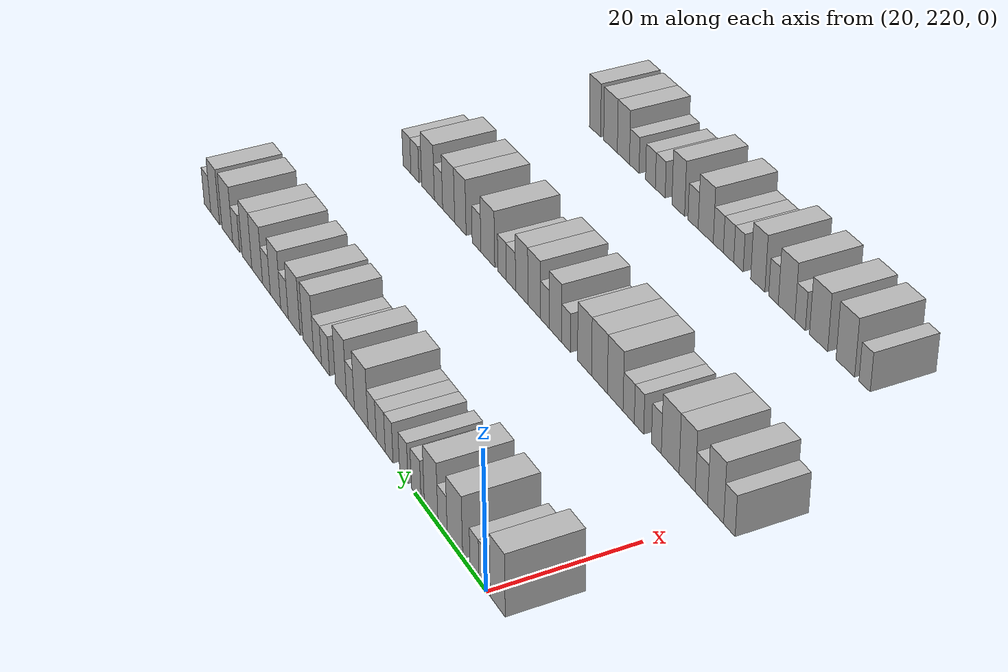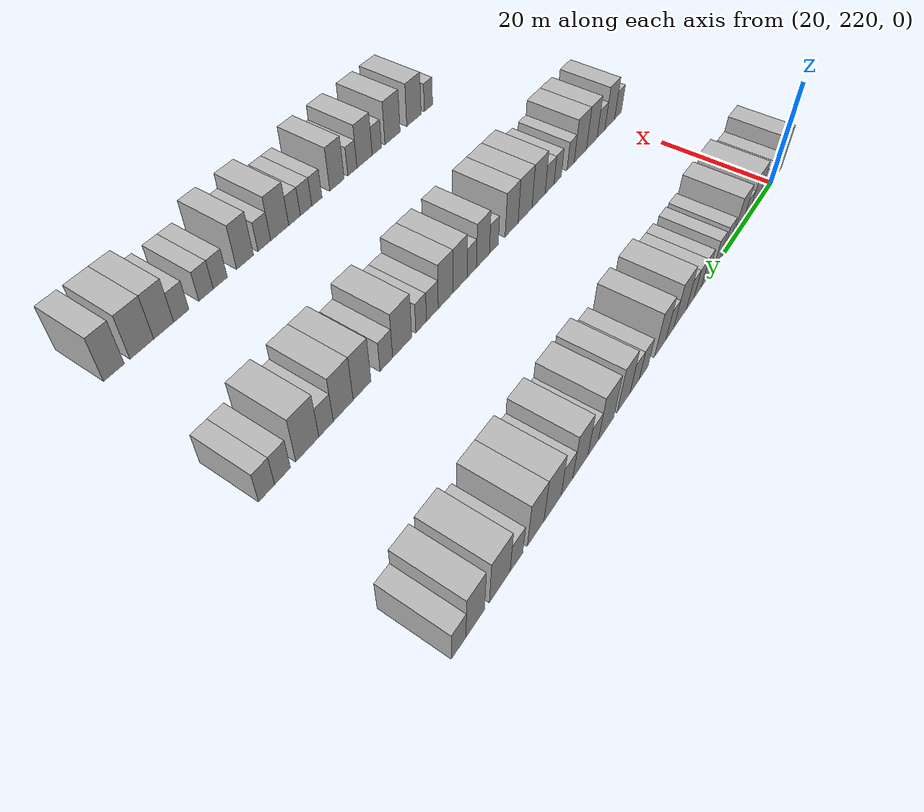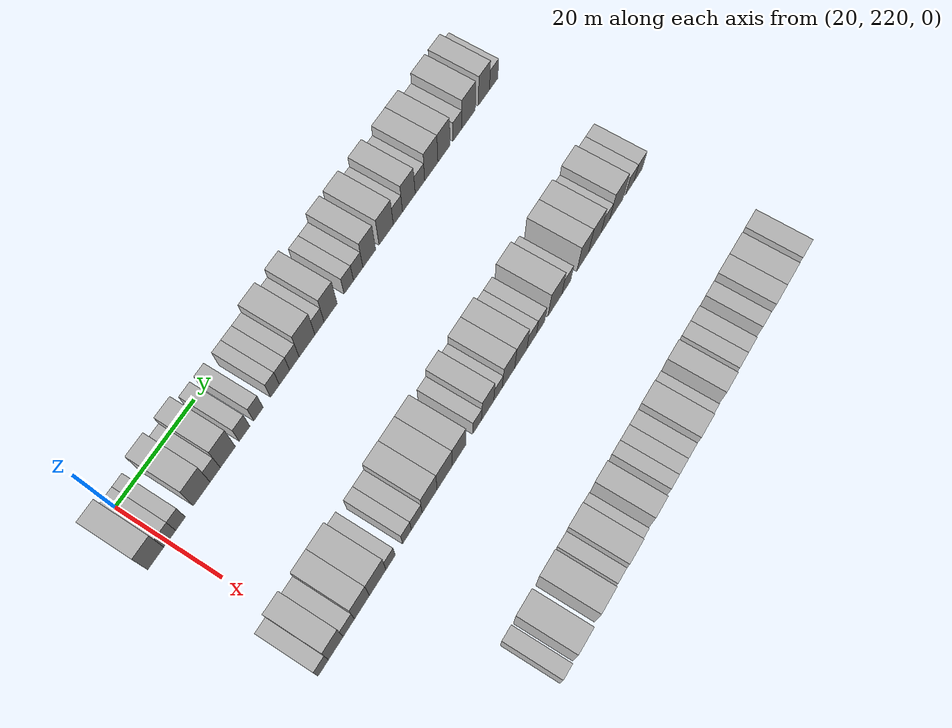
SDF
<sdf version="1.6">
 <world name="default">
  <model name="building_164">
   <static>1</static>
   <pose>25.0000 217.0883 0 0.000000 0.000000 0.000000</pose>
   <link name="link">
    <pose>0 0 4.50 0 0 0</pose>
    <collision name="collision"><geometry><box><size>10.0000 3.9330 9.0000</size></box></geometry></collision>
    <visual name="visual">
     <cast_shadows>0</cast_shadows>
     <geometry><box><size>10.0000 3.9330 9.0000</size></box></geometry>
     <material>
      <script>
       <uri>model://HANNAS_wall/materials/scripts</uri>
       <uri>model://HANNAS_wall/materials/textures</uri>
       <name>vrc/HANNAS_wall</name>
      </script>
     </material>
    </visual>
   </link>
  </model>
  <model name="building_165">
   <static>1</static>
   <pose>25.0000 220.5267 0 0.000000 0.000000 0.000000</pose>
   <link name="link">
    <pose>0 0 3.00 0 0 0</pose>
    <collision name="collision"><geometry><box><size>10.0000 2.9438 6.0000</size></box></geometry></collision>
    <visual name="visual">
     <cast_shadows>0</cast_shadows>
     <geometry><box><size>10.0000 2.9438 6.0000</size></box></geometry>
     <material>
      <script>
       <uri>model://HANNAS_wall/materials/scripts</uri>
       <uri>model://HANNAS_wall/materials/textures</uri>
       <name>vrc/HANNAS_wall</name>
      </script>
     </material>
    </visual>
   </link>
  </model>
  <model name="building_166">
   <static>1</static>
   <pose>25.0000 223.2079 0 0.000000 0.000000 0.000000</pose>
   <link name="link">
    <pose>0 0 3.00 0 0 0</pose>
    <collision name="collision"><geometry><box><size>10.0000 2.4186 6.0000</size></box></geometry></collision>
    <visual name="visual">
     <cast_shadows>0</cast_shadows>
     <geometry><box><size>10.0000 2.4186 6.0000</size></box></geometry>
     <material>
      <script>
       <uri>model://HANNAS_wall/materials/scripts</uri>
       <uri>model://HANNAS_wall/materials/textures</uri>
       <name>vrc/HANNAS_wall</name>
      </script>
     </material>
    </visual>
   </link>
  </model>
  <model name="building_167">
   <static>1</static>
   <pose>25.0000 228.5612 0 0.000000 0.000000 0.000000</pose>
   <link name="link">
    <pose>0 0 4.50 0 0 0</pose>
    <collision name="collision"><geometry><box><size>10.0000 4.2880 9.0000</size></box></geometry></collision>
    <visual name="visual">
     <cast_shadows>0</cast_shadows>
     <geometry><box><size>10.0000 4.2880 9.0000</size></box></geometry>
     <material>
      <script>
       <uri>model://HANNAS_wall/materials/scripts</uri>
       <uri>model://HANNAS_wall/materials/textures</uri>
       <name>vrc/HANNAS_wall</name>
      </script>
     </material>
    </visual>
   </link>
  </model>
  <model name="building_168">
   <static>1</static>
   <pose>25.0000 232.0219 0 0.000000 0.000000 0.000000</pose>
   <link name="link">
    <pose>0 0 3.00 0 0 0</pose>
    <collision name="collision"><geometry><box><size>10.0000 2.6333 6.0000</size></box></geometry></collision>
    <visual name="visual">
     <cast_shadows>0</cast_shadows>
     <geometry><box><size>10.0000 2.6333 6.0000</size></box></geometry>
     <material>
      <script>
       <uri>model://HANNAS_wall/materials/scripts</uri>
       <uri>model://HANNAS_wall/materials/textures</uri>
       <name>vrc/HANNAS_wall</name>
      </script>
     </material>
    </visual>
   </link>
  </model>
  <model name="building_169">
   <static>1</static>
   <pose>25.0000 235.2988 0 0.000000 0.000000 0.000000</pose>
   <link name="link">
    <pose>0 0 4.50 0 0 0</pose>
    <collision name="collision"><geometry><box><size>10.0000 3.9205 9.0000</size></box></geometry></collision>
    <visual name="visual">
     <cast_shadows>0</cast_shadows>
     <geometry><box><size>10.0000 3.9205 9.0000</size></box></geometry>
     <material>
      <script>
       <uri>model://HANNAS_wall/materials/scripts</uri>
       <uri>model://HANNAS_wall/materials/textures</uri>
       <name>vrc/HANNAS_wall</name>
      </script>
     </material>
    </visual>
   </link>
  </model>
  <model name="building_170">
   <static>1</static>
   <pose>25.0000 239.6744 0 0.000000 0.000000 0.000000</pose>
   <link name="link">
    <pose>0 0 3.00 0 0 0</pose>
    <collision name="collision"><geometry><box><size>10.0000 2.8307 6.0000</size></box></geometry></collision>
    <visual name="visual">
     <cast_shadows>0</cast_shadows>
     <geometry><box><size>10.0000 2.8307 6.0000</size></box></geometry>
     <material>
      <script>
       <uri>model://HANNAS_wall/materials/scripts</uri>
       <uri>model://HANNAS_wall/materials/textures</uri>
       <name>vrc/HANNAS_wall</name>
      </script>
     </material>
    </visual>
   </link>
  </model>
  <model name="building_171">
   <static>1</static>
   <pose>25.0000 243.3656 0 0.000000 0.000000 0.000000</pose>
   <link name="link">
    <pose>0 0 3.00 0 0 0</pose>
    <collision name="collision"><geometry><box><size>10.0000 2.5516 6.0000</size></box></geometry></collision>
    <visual name="visual">
     <cast_shadows>0</cast_shadows>
     <geometry><box><size>10.0000 2.5516 6.0000</size></box></geometry>
     <material>
      <script>
       <uri>model://HANNAS_wall/materials/scripts</uri>
       <uri>model://HANNAS_wall/materials/textures</uri>
       <name>vrc/HANNAS_wall</name>
      </script>
     </material>
    </visual>
   </link>
  </model>
  <model name="building_172">
   <static>1</static>
   <pose>25.0000 247.8459 0 0.000000 0.000000 0.000000</pose>
   <link name="link">
    <pose>0 0 3.00 0 0 0</pose>
    <collision name="collision"><geometry><box><size>10.0000 2.4091 6.0000</size></box></geometry></collision>
    <visual name="visual">
     <cast_shadows>0</cast_shadows>
     <geometry><box><size>10.0000 2.4091 6.0000</size></box></geometry>
     <material>
      <script>
       <uri>model://HANNAS_wall/materials/scripts</uri>
       <uri>model://HANNAS_wall/materials/textures</uri>
       <name>vrc/HANNAS_wall</name>
      </script>
     </material>
    </visual>
   </link>
  </model>
  <model name="building_173">
   <static>1</static>
   <pose>25.0000 250.4526 0 0.000000 0.000000 0.000000</pose>
   <link name="link">
    <pose>0 0 3.00 0 0 0</pose>
    <collision name="collision"><geometry><box><size>10.0000 2.8041 6.0000</size></box></geometry></collision>
    <visual name="visual">
     <cast_shadows>0</cast_shadows>
     <geometry><box><size>10.0000 2.8041 6.0000</size></box></geometry>
     <material>
      <script>
       <uri>model://HANNAS_wall/materials/scripts</uri>
       <uri>model://HANNAS_wall/materials/textures</uri>
       <name>vrc/HANNAS_wall</name>
      </script>
     </material>
    </visual>
   </link>
  </model>
  <model name="building_174">
   <static>1</static>
   <pose>25.0000 253.1650 0 0.000000 0.000000 0.000000</pose>
   <link name="link">
    <pose>0 0 3.00 0 0 0</pose>
    <collision name="collision"><geometry><box><size>10.0000 2.6209 6.0000</size></box></geometry></collision>
    <visual name="visual">
     <cast_shadows>0</cast_shadows>
     <geometry><box><size>10.0000 2.6209 6.0000</size></box></geometry>
     <material>
      <script>
       <uri>model://HANNAS_wall/materials/scripts</uri>
       <uri>model://HANNAS_wall/materials/textures</uri>
       <name>vrc/HANNAS_wall</name>
      </script>
     </material>
    </visual>
   </link>
  </model>
  <model name="building_175">
   <static>1</static>
   <pose>25.0000 256.6783 0 0.000000 0.000000 0.000000</pose>
   <link name="link">
    <pose>0 0 4.50 0 0 0</pose>
    <collision name="collision"><geometry><box><size>10.0000 4.4056 9.0000</size></box></geometry></collision>
    <visual name="visual">
     <cast_shadows>0</cast_shadows>
     <geometry><box><size>10.0000 4.4056 9.0000</size></box></geometry>
     <material>
      <script>
       <uri>model://HANNAS_wall/materials/scripts</uri>
       <uri>model://HANNAS_wall/materials/textures</uri>
       <name>vrc/HANNAS_wall</name>
      </script>
     </material>
    </visual>
   </link>
  </model>
  <model name="building_176">
   <static>1</static>
   <pose>25.0000 260.1777 0 0.000000 0.000000 0.000000</pose>
   <link name="link">
    <pose>0 0 3.00 0 0 0</pose>
    <collision name="collision"><geometry><box><size>10.0000 2.5931 6.0000</size></box></geometry></collision>
    <visual name="visual">
     <cast_shadows>0</cast_shadows>
     <geometry><box><size>10.0000 2.5931 6.0000</size></box></geometry>
     <material>
      <script>
       <uri>model://HANNAS_wall/materials/scripts</uri>
       <uri>model://HANNAS_wall/materials/textures</uri>
       <name>vrc/HANNAS_wall</name>
      </script>
     </material>
    </visual>
   </link>
  </model>
  <model name="building_177">
   <static>1</static>
   <pose>25.0000 263.3478 0 0.000000 0.000000 0.000000</pose>
   <link name="link">
    <pose>0 0 4.50 0 0 0</pose>
    <collision name="collision"><geometry><box><size>10.0000 3.7472 9.0000</size></box></geometry></collision>
    <visual name="visual">
     <cast_shadows>0</cast_shadows>
     <geometry><box><size>10.0000 3.7472 9.0000</size></box></geometry>
     <material>
      <script>
       <uri>model://HANNAS_wall/materials/scripts</uri>
       <uri>model://HANNAS_wall/materials/textures</uri>
       <name>vrc/HANNAS_wall</name>
      </script>
     </material>
    </visual>
   </link>
  </model>
  <model name="building_178">
   <static>1</static>
   <pose>25.0000 268.5893 0 0.000000 0.000000 0.000000</pose>
   <link name="link">
    <pose>0 0 3.00 0 0 0</pose>
    <collision name="collision"><geometry><box><size>10.0000 2.7357 6.0000</size></box></geometry></collision>
    <visual name="visual">
     <cast_shadows>0</cast_shadows>
     <geometry><box><size>10.0000 2.7357 6.0000</size></box></geometry>
     <material>
      <script>
       <uri>model://HANNAS_wall/materials/scripts</uri>
       <uri>model://HANNAS_wall/materials/textures</uri>
       <name>vrc/HANNAS_wall</name>
      </script>
     </material>
    </visual>
   </link>
  </model>
  <model name="building_179">
   <static>1</static>
   <pose>25.0000 271.3431 0 0.000000 0.000000 0.000000</pose>
   <link name="link">
    <pose>0 0 3.00 0 0 0</pose>
    <collision name="collision"><geometry><box><size>10.0000 2.7718 6.0000</size></box></geometry></collision>
    <visual name="visual">
     <cast_shadows>0</cast_shadows>
     <geometry><box><size>10.0000 2.7718 6.0000</size></box></geometry>
     <material>
      <script>
       <uri>model://HANNAS_wall/materials/scripts</uri>
       <uri>model://HANNAS_wall/materials/textures</uri>
       <name>vrc/HANNAS_wall</name>
      </script>
     </material>
    </visual>
   </link>
  </model>
  <model name="building_180">
   <static>1</static>
   <pose>25.0000 274.6166 0 0.000000 0.000000 0.000000</pose>
   <link name="link">
    <pose>0 0 4.50 0 0 0</pose>
    <collision name="collision"><geometry><box><size>10.0000 3.7752 9.0000</size></box></geometry></collision>
    <visual name="visual">
     <cast_shadows>0</cast_shadows>
     <geometry><box><size>10.0000 3.7752 9.0000</size></box></geometry>
     <material>
      <script>
       <uri>model://HANNAS_wall/materials/scripts</uri>
       <uri>model://HANNAS_wall/materials/textures</uri>
       <name>vrc/HANNAS_wall</name>
      </script>
     </material>
    </visual>
   </link>
  </model>
  <model name="building_181">
   <static>1</static>
   <pose>25.0000 279.6625 0 0.000000 0.000000 0.000000</pose>
   <link name="link">
    <pose>0 0 4.50 0 0 0</pose>
    <collision name="collision"><geometry><box><size>10.0000 4.3165 9.0000</size></box></geometry></collision>
    <visual name="visual">
     <cast_shadows>0</cast_shadows>
     <geometry><box><size>10.0000 4.3165 9.0000</size></box></geometry>
     <material>
      <script>
       <uri>model://HANNAS_wall/materials/scripts</uri>
       <uri>model://HANNAS_wall/materials/textures</uri>
       <name>vrc/HANNAS_wall</name>
      </script>
     </material>
    </visual>
   </link>
  </model>
  <model name="building_182">
   <static>1</static>
   <pose>25.0000 283.2222 0 0.000000 0.000000 0.000000</pose>
   <link name="link">
    <pose>0 0 3.00 0 0 0</pose>
    <collision name="collision"><geometry><box><size>10.0000 2.8029 6.0000</size></box></geometry></collision>
    <visual name="visual">
     <cast_shadows>0</cast_shadows>
     <geometry><box><size>10.0000 2.8029 6.0000</size></box></geometry>
     <material>
      <script>
       <uri>model://HANNAS_wall/materials/scripts</uri>
       <uri>model://HANNAS_wall/materials/textures</uri>
       <name>vrc/HANNAS_wall</name>
      </script>
     </material>
    </visual>
   </link>
  </model>
  <model name="building_183">
   <static>1</static>
   <pose>25.0000 286.5816 0 0.000000 0.000000 0.000000</pose>
   <link name="link">
    <pose>0 0 4.50 0 0 0</pose>
    <collision name="collision"><geometry><box><size>10.0000 3.9159 9.0000</size></box></geometry></collision>
    <visual name="visual">
     <cast_shadows>0</cast_shadows>
     <geometry><box><size>10.0000 3.9159 9.0000</size></box></geometry>
     <material>
      <script>
       <uri>model://HANNAS_wall/materials/scripts</uri>
       <uri>model://HANNAS_wall/materials/textures</uri>
       <name>vrc/HANNAS_wall</name>
      </script>
     </material>
    </visual>
   </link>
  </model>
  <model name="building_184">
   <static>1</static>
   <pose>25.0000 290.0146 0 0.000000 0.000000 0.000000</pose>
   <link name="link">
    <pose>0 0 3.00 0 0 0</pose>
    <collision name="collision"><geometry><box><size>10.0000 2.9501 6.0000</size></box></geometry></collision>
    <visual name="visual">
     <cast_shadows>0</cast_shadows>
     <geometry><box><size>10.0000 2.9501 6.0000</size></box></geometry>
     <material>
      <script>
       <uri>model://HANNAS_wall/materials/scripts</uri>
       <uri>model://HANNAS_wall/materials/textures</uri>
       <name>vrc/HANNAS_wall</name>
      </script>
     </material>
    </visual>
   </link>
  </model>
  <model name="building_185">
   <static>1</static>
   <pose>25.0000 293.5668 0 0.000000 0.000000 0.000000</pose>
   <link name="link">
    <pose>0 0 4.50 0 0 0</pose>
    <collision name="collision"><geometry><box><size>10.0000 4.1543 9.0000</size></box></geometry></collision>
    <visual name="visual">
     <cast_shadows>0</cast_shadows>
     <geometry><box><size>10.0000 4.1543 9.0000</size></box></geometry>
     <material>
      <script>
       <uri>model://HANNAS_wall/materials/scripts</uri>
       <uri>model://HANNAS_wall/materials/textures</uri>
       <name>vrc/HANNAS_wall</name>
      </script>
     </material>
    </visual>
   </link>
  </model>
  <model name="building_186">
   <static>1</static>
   <pose>25.0000 297.5642 0 0.000000 0.000000 0.000000</pose>
   <link name="link">
    <pose>0 0 4.50 0 0 0</pose>
    <collision name="collision"><geometry><box><size>10.0000 3.8406 9.0000</size></box></geometry></collision>
    <visual name="visual">
     <cast_shadows>0</cast_shadows>
     <geometry><box><size>10.0000 3.8406 9.0000</size></box></geometry>
     <material>
      <script>
       <uri>model://HANNAS_wall/materials/scripts</uri>
       <uri>model://HANNAS_wall/materials/textures</uri>
       <name>vrc/HANNAS_wall</name>
      </script>
     </material>
    </visual>
   </link>
  </model>
  <model name="building_187">
   <static>1</static>
   <pose>25.0000 301.9031 0 0.000000 0.000000 0.000000</pose>
   <link name="link">
    <pose>0 0 3.00 0 0 0</pose>
    <collision name="collision"><geometry><box><size>10.0000 2.8372 6.0000</size></box></geometry></collision>
    <visual name="visual">
     <cast_shadows>0</cast_shadows>
     <geometry><box><size>10.0000 2.8372 6.0000</size></box></geometry>
     <material>
      <script>
       <uri>model://HANNAS_wall/materials/scripts</uri>
       <uri>model://HANNAS_wall/materials/textures</uri>
       <name>vrc/HANNAS_wall</name>
      </script>
     </material>
    </visual>
   </link>
  </model>
  <model name="building_188">
   <static>1</static>
   <pose>25.0000 305.5164 0 0.000000 0.000000 0.000000</pose>
   <link name="link">
    <pose>0 0 4.50 0 0 0</pose>
    <collision name="collision"><geometry><box><size>10.0000 4.3893 9.0000</size></box></geometry></collision>
    <visual name="visual">
     <cast_shadows>0</cast_shadows>
     <geometry><box><size>10.0000 4.3893 9.0000</size></box></geometry>
     <material>
      <script>
       <uri>model://HANNAS_wall/materials/scripts</uri>
       <uri>model://HANNAS_wall/materials/textures</uri>
       <name>vrc/HANNAS_wall</name>
      </script>
     </material>
    </visual>
   </link>
  </model>
  <model name="building_189">
   <static>1</static>
   <pose>25.0000 310.5668 0 0.000000 0.000000 0.000000</pose>
   <link name="link">
    <pose>0 0 4.50 0 0 0</pose>
    <collision name="collision"><geometry><box><size>10.0000 3.7114 9.0000</size></box></geometry></collision>
    <visual name="visual">
     <cast_shadows>0</cast_shadows>
     <geometry><box><size>10.0000 3.7114 9.0000</size></box></geometry>
     <material>
      <script>
       <uri>model://HANNAS_wall/materials/scripts</uri>
       <uri>model://HANNAS_wall/materials/textures</uri>
       <name>vrc/HANNAS_wall</name>
      </script>
     </material>
    </visual>
   </link>
  </model>
  <model name="building_190">
   <static>1</static>
   <pose>25.0000 313.8237 0 0.000000 0.000000 0.000000</pose>
   <link name="link">
    <pose>0 0 3.00 0 0 0</pose>
    <collision name="collision"><geometry><box><size>10.0000 2.8024 6.0000</size></box></geometry></collision>
    <visual name="visual">
     <cast_shadows>0</cast_shadows>
     <geometry><box><size>10.0000 2.8024 6.0000</size></box></geometry>
     <material>
      <script>
       <uri>model://HANNAS_wall/materials/scripts</uri>
       <uri>model://HANNAS_wall/materials/textures</uri>
       <name>vrc/HANNAS_wall</name>
      </script>
     </material>
    </visual>
   </link>
  </model>
  <model name="building_390">
   <static>1</static>
   <pose>55.0000 217.2723 0 0.000000 0.000000 0.000000</pose>
   <link name="link">
    <pose>0 0 3.00 0 0 0</pose>
    <collision name="collision"><geometry><box><size>10.0000 2.6662 6.0000</size></box></geometry></collision>
    <visual name="visual">
     <cast_shadows>0</cast_shadows>
     <geometry><box><size>10.0000 2.6662 6.0000</size></box></geometry>
     <material>
      <script>
       <uri>model://HANNAS_wall/materials/scripts</uri>
       <uri>model://HANNAS_wall/materials/textures</uri>
       <name>vrc/HANNAS_wall</name>
      </script>
     </material>
    </visual>
   </link>
  </model>
  <model name="building_391">
   <static>1</static>
   <pose>55.0000 220.5039 0 0.000000 0.000000 0.000000</pose>
   <link name="link">
    <pose>0 0 4.50 0 0 0</pose>
    <collision name="collision"><geometry><box><size>10.0000 3.7971 9.0000</size></box></geometry></collision>
    <visual name="visual">
     <cast_shadows>0</cast_shadows>
     <geometry><box><size>10.0000 3.7971 9.0000</size></box></geometry>
     <material>
      <script>
       <uri>model://HANNAS_wall/materials/scripts</uri>
       <uri>model://HANNAS_wall/materials/textures</uri>
       <name>vrc/HANNAS_wall</name>
      </script>
     </material>
    </visual>
   </link>
  </model>
  <model name="building_392">
   <static>1</static>
   <pose>55.0000 223.8771 0 0.000000 0.000000 0.000000</pose>
   <link name="link">
    <pose>0 0 3.00 0 0 0</pose>
    <collision name="collision"><geometry><box><size>10.0000 2.9493 6.0000</size></box></geometry></collision>
    <visual name="visual">
     <cast_shadows>0</cast_shadows>
     <geometry><box><size>10.0000 2.9493 6.0000</size></box></geometry>
     <material>
      <script>
       <uri>model://HANNAS_wall/materials/scripts</uri>
       <uri>model://HANNAS_wall/materials/textures</uri>
       <name>vrc/HANNAS_wall</name>
      </script>
     </material>
    </visual>
   </link>
  </model>
  <model name="building_393">
   <static>1</static>
   <pose>55.0000 227.3253 0 0.000000 0.000000 0.000000</pose>
   <link name="link">
    <pose>0 0 4.50 0 0 0</pose>
    <collision name="collision"><geometry><box><size>10.0000 3.9472 9.0000</size></box></geometry></collision>
    <visual name="visual">
     <cast_shadows>0</cast_shadows>
     <geometry><box><size>10.0000 3.9472 9.0000</size></box></geometry>
     <material>
      <script>
       <uri>model://HANNAS_wall/materials/scripts</uri>
       <uri>model://HANNAS_wall/materials/textures</uri>
       <name>vrc/HANNAS_wall</name>
      </script>
     </material>
    </visual>
   </link>
  </model>
  <model name="building_394">
   <static>1</static>
   <pose>55.0000 231.5200 0 0.000000 0.000000 0.000000</pose>
   <link name="link">
    <pose>0 0 4.50 0 0 0</pose>
    <collision name="collision"><geometry><box><size>10.0000 4.4421 9.0000</size></box></geometry></collision>
    <visual name="visual">
     <cast_shadows>0</cast_shadows>
     <geometry><box><size>10.0000 4.4421 9.0000</size></box></geometry>
     <material>
      <script>
       <uri>model://HANNAS_wall/materials/scripts</uri>
       <uri>model://HANNAS_wall/materials/textures</uri>
       <name>vrc/HANNAS_wall</name>
      </script>
     </material>
    </visual>
   </link>
  </model>
  <model name="building_395">
   <static>1</static>
   <pose>55.0000 234.9983 0 0.000000 0.000000 0.000000</pose>
   <link name="link">
    <pose>0 0 3.00 0 0 0</pose>
    <collision name="collision"><geometry><box><size>10.0000 2.5147 6.0000</size></box></geometry></collision>
    <visual name="visual">
     <cast_shadows>0</cast_shadows>
     <geometry><box><size>10.0000 2.5147 6.0000</size></box></geometry>
     <material>
      <script>
       <uri>model://HANNAS_wall/materials/scripts</uri>
       <uri>model://HANNAS_wall/materials/textures</uri>
       <name>vrc/HANNAS_wall</name>
      </script>
     </material>
    </visual>
   </link>
  </model>
  <model name="building_396">
   <static>1</static>
   <pose>55.0000 239.4736 0 0.000000 0.000000 0.000000</pose>
   <link name="link">
    <pose>0 0 3.00 0 0 0</pose>
    <collision name="collision"><geometry><box><size>10.0000 2.4359 6.0000</size></box></geometry></collision>
    <visual name="visual">
     <cast_shadows>0</cast_shadows>
     <geometry><box><size>10.0000 2.4359 6.0000</size></box></geometry>
     <material>
      <script>
       <uri>model://HANNAS_wall/materials/scripts</uri>
       <uri>model://HANNAS_wall/materials/textures</uri>
       <name>vrc/HANNAS_wall</name>
      </script>
     </material>
    </visual>
   </link>
  </model>
  <model name="building_397">
   <static>1</static>
   <pose>55.0000 242.1850 0 0.000000 0.000000 0.000000</pose>
   <link name="link">
    <pose>0 0 3.00 0 0 0</pose>
    <collision name="collision"><geometry><box><size>10.0000 2.9868 6.0000</size></box></geometry></collision>
    <visual name="visual">
     <cast_shadows>0</cast_shadows>
     <geometry><box><size>10.0000 2.9868 6.0000</size></box></geometry>
     <material>
      <script>
       <uri>model://HANNAS_wall/materials/scripts</uri>
       <uri>model://HANNAS_wall/materials/textures</uri>
       <name>vrc/HANNAS_wall</name>
      </script>
     </material>
    </visual>
   </link>
  </model>
  <model name="building_398">
   <static>1</static>
   <pose>55.0000 245.7939 0 0.000000 0.000000 0.000000</pose>
   <link name="link">
    <pose>0 0 4.50 0 0 0</pose>
    <collision name="collision"><geometry><box><size>10.0000 4.2309 9.0000</size></box></geometry></collision>
    <visual name="visual">
     <cast_shadows>0</cast_shadows>
     <geometry><box><size>10.0000 4.2309 9.0000</size></box></geometry>
     <material>
      <script>
       <uri>model://HANNAS_wall/materials/scripts</uri>
       <uri>model://HANNAS_wall/materials/textures</uri>
       <name>vrc/HANNAS_wall</name>
      </script>
     </material>
    </visual>
   </link>
  </model>
  <model name="building_399">
   <static>1</static>
   <pose>55.0000 250.0844 0 0.000000 0.000000 0.000000</pose>
   <link name="link">
    <pose>0 0 4.50 0 0 0</pose>
    <collision name="collision"><geometry><box><size>10.0000 4.3501 9.0000</size></box></geometry></collision>
    <visual name="visual">
     <cast_shadows>0</cast_shadows>
     <geometry><box><size>10.0000 4.3501 9.0000</size></box></geometry>
     <material>
      <script>
       <uri>model://HANNAS_wall/materials/scripts</uri>
       <uri>model://HANNAS_wall/materials/textures</uri>
       <name>vrc/HANNAS_wall</name>
      </script>
     </material>
    </visual>
   </link>
  </model>
  <model name="building_400">
   <static>1</static>
   <pose>55.0000 254.2293 0 0.000000 0.000000 0.000000</pose>
   <link name="link">
    <pose>0 0 4.50 0 0 0</pose>
    <collision name="collision"><geometry><box><size>10.0000 3.9398 9.0000</size></box></geometry></collision>
    <visual name="visual">
     <cast_shadows>0</cast_shadows>
     <geometry><box><size>10.0000 3.9398 9.0000</size></box></geometry>
     <material>
      <script>
       <uri>model://HANNAS_wall/materials/scripts</uri>
       <uri>model://HANNAS_wall/materials/textures</uri>
       <name>vrc/HANNAS_wall</name>
      </script>
     </material>
    </visual>
   </link>
  </model>
  <model name="building_401">
   <static>1</static>
   <pose>55.0000 259.4873 0 0.000000 0.000000 0.000000</pose>
   <link name="link">
    <pose>0 0 3.00 0 0 0</pose>
    <collision name="collision"><geometry><box><size>10.0000 2.5761 6.0000</size></box></geometry></collision>
    <visual name="visual">
     <cast_shadows>0</cast_shadows>
     <geometry><box><size>10.0000 2.5761 6.0000</size></box></geometry>
     <material>
      <script>
       <uri>model://HANNAS_wall/materials/scripts</uri>
       <uri>model://HANNAS_wall/materials/textures</uri>
       <name>vrc/HANNAS_wall</name>
      </script>
     </material>
    </visual>
   </link>
  </model>
  <model name="building_402">
   <static>1</static>
   <pose>55.0000 262.6099 0 0.000000 0.000000 0.000000</pose>
   <link name="link">
    <pose>0 0 4.50 0 0 0</pose>
    <collision name="collision"><geometry><box><size>10.0000 3.6693 9.0000</size></box></geometry></collision>
    <visual name="visual">
     <cast_shadows>0</cast_shadows>
     <geometry><box><size>10.0000 3.6693 9.0000</size></box></geometry>
     <material>
      <script>
       <uri>model://HANNAS_wall/materials/scripts</uri>
       <uri>model://HANNAS_wall/materials/textures</uri>
       <name>vrc/HANNAS_wall</name>
      </script>
     </material>
    </visual>
   </link>
  </model>
  <model name="building_403">
   <static>1</static>
   <pose>55.0000 265.7340 0 0.000000 0.000000 0.000000</pose>
   <link name="link">
    <pose>0 0 3.00 0 0 0</pose>
    <collision name="collision"><geometry><box><size>10.0000 2.5790 6.0000</size></box></geometry></collision>
    <visual name="visual">
     <cast_shadows>0</cast_shadows>
     <geometry><box><size>10.0000 2.5790 6.0000</size></box></geometry>
     <material>
      <script>
       <uri>model://HANNAS_wall/materials/scripts</uri>
       <uri>model://HANNAS_wall/materials/textures</uri>
       <name>vrc/HANNAS_wall</name>
      </script>
     </material>
    </visual>
   </link>
  </model>
  <model name="building_404">
   <static>1</static>
   <pose>55.0000 268.9096 0 0.000000 0.000000 0.000000</pose>
   <link name="link">
    <pose>0 0 4.50 0 0 0</pose>
    <collision name="collision"><geometry><box><size>10.0000 3.7722 9.0000</size></box></geometry></collision>
    <visual name="visual">
     <cast_shadows>0</cast_shadows>
     <geometry><box><size>10.0000 3.7722 9.0000</size></box></geometry>
     <material>
      <script>
       <uri>model://HANNAS_wall/materials/scripts</uri>
       <uri>model://HANNAS_wall/materials/textures</uri>
       <name>vrc/HANNAS_wall</name>
      </script>
     </material>
    </visual>
   </link>
  </model>
  <model name="building_405">
   <static>1</static>
   <pose>55.0000 272.6987 0 0.000000 0.000000 0.000000</pose>
   <link name="link">
    <pose>0 0 4.50 0 0 0</pose>
    <collision name="collision"><geometry><box><size>10.0000 3.8060 9.0000</size></box></geometry></collision>
    <visual name="visual">
     <cast_shadows>0</cast_shadows>
     <geometry><box><size>10.0000 3.8060 9.0000</size></box></geometry>
     <material>
      <script>
       <uri>model://HANNAS_wall/materials/scripts</uri>
       <uri>model://HANNAS_wall/materials/textures</uri>
       <name>vrc/HANNAS_wall</name>
      </script>
     </material>
    </visual>
   </link>
  </model>
  <model name="building_406">
   <static>1</static>
   <pose>55.0000 276.0822 0 0.000000 0.000000 0.000000</pose>
   <link name="link">
    <pose>0 0 3.00 0 0 0</pose>
    <collision name="collision"><geometry><box><size>10.0000 2.9609 6.0000</size></box></geometry></collision>
    <visual name="visual">
     <cast_shadows>0</cast_shadows>
     <geometry><box><size>10.0000 2.9609 6.0000</size></box></geometry>
     <material>
      <script>
       <uri>model://HANNAS_wall/materials/scripts</uri>
       <uri>model://HANNAS_wall/materials/textures</uri>
       <name>vrc/HANNAS_wall</name>
      </script>
     </material>
    </visual>
   </link>
  </model>
  <model name="building_407">
   <static>1</static>
   <pose>55.0000 278.8691 0 0.000000 0.000000 0.000000</pose>
   <link name="link">
    <pose>0 0 3.00 0 0 0</pose>
    <collision name="collision"><geometry><box><size>10.0000 2.6129 6.0000</size></box></geometry></collision>
    <visual name="visual">
     <cast_shadows>0</cast_shadows>
     <geometry><box><size>10.0000 2.6129 6.0000</size></box></geometry>
     <material>
      <script>
       <uri>model://HANNAS_wall/materials/scripts</uri>
       <uri>model://HANNAS_wall/materials/textures</uri>
       <name>vrc/HANNAS_wall</name>
      </script>
     </material>
    </visual>
   </link>
  </model>
  <model name="building_408">
   <static>1</static>
   <pose>55.0000 283.4202 0 0.000000 0.000000 0.000000</pose>
   <link name="link">
    <pose>0 0 4.50 0 0 0</pose>
    <collision name="collision"><geometry><box><size>10.0000 4.4894 9.0000</size></box></geometry></collision>
    <visual name="visual">
     <cast_shadows>0</cast_shadows>
     <geometry><box><size>10.0000 4.4894 9.0000</size></box></geometry>
     <material>
      <script>
       <uri>model://HANNAS_wall/materials/scripts</uri>
       <uri>model://HANNAS_wall/materials/textures</uri>
       <name>vrc/HANNAS_wall</name>
      </script>
     </material>
    </visual>
   </link>
  </model>
  <model name="building_409">
   <static>1</static>
   <pose>55.0000 287.1118 0 0.000000 0.000000 0.000000</pose>
   <link name="link">
    <pose>0 0 3.00 0 0 0</pose>
    <collision name="collision"><geometry><box><size>10.0000 2.8939 6.0000</size></box></geometry></collision>
    <visual name="visual">
     <cast_shadows>0</cast_shadows>
     <geometry><box><size>10.0000 2.8939 6.0000</size></box></geometry>
     <material>
      <script>
       <uri>model://HANNAS_wall/materials/scripts</uri>
       <uri>model://HANNAS_wall/materials/textures</uri>
       <name>vrc/HANNAS_wall</name>
      </script>
     </material>
    </visual>
   </link>
  </model>
  <model name="building_410">
   <static>1</static>
   <pose>55.0000 292.4850 0 0.000000 0.000000 0.000000</pose>
   <link name="link">
    <pose>0 0 4.50 0 0 0</pose>
    <collision name="collision"><geometry><box><size>10.0000 3.8524 9.0000</size></box></geometry></collision>
    <visual name="visual">
     <cast_shadows>0</cast_shadows>
     <geometry><box><size>10.0000 3.8524 9.0000</size></box></geometry>
     <material>
      <script>
       <uri>model://HANNAS_wall/materials/scripts</uri>
       <uri>model://HANNAS_wall/materials/textures</uri>
       <name>vrc/HANNAS_wall</name>
      </script>
     </material>
    </visual>
   </link>
  </model>
  <model name="building_411">
   <static>1</static>
   <pose>55.0000 296.4910 0 0.000000 0.000000 0.000000</pose>
   <link name="link">
    <pose>0 0 4.50 0 0 0</pose>
    <collision name="collision"><geometry><box><size>10.0000 4.1597 9.0000</size></box></geometry></collision>
    <visual name="visual">
     <cast_shadows>0</cast_shadows>
     <geometry><box><size>10.0000 4.1597 9.0000</size></box></geometry>
     <material>
      <script>
       <uri>model://HANNAS_wall/materials/scripts</uri>
       <uri>model://HANNAS_wall/materials/textures</uri>
       <name>vrc/HANNAS_wall</name>
      </script>
     </material>
    </visual>
   </link>
  </model>
  <model name="building_412">
   <static>1</static>
   <pose>55.0000 300.0225 0 0.000000 0.000000 0.000000</pose>
   <link name="link">
    <pose>0 0 3.00 0 0 0</pose>
    <collision name="collision"><geometry><box><size>10.0000 2.9033 6.0000</size></box></geometry></collision>
    <visual name="visual">
     <cast_shadows>0</cast_shadows>
     <geometry><box><size>10.0000 2.9033 6.0000</size></box></geometry>
     <material>
      <script>
       <uri>model://HANNAS_wall/materials/scripts</uri>
       <uri>model://HANNAS_wall/materials/textures</uri>
       <name>vrc/HANNAS_wall</name>
      </script>
     </material>
    </visual>
   </link>
  </model>
  <model name="building_413">
   <static>1</static>
   <pose>55.0000 303.7156 0 0.000000 0.000000 0.000000</pose>
   <link name="link">
    <pose>0 0 4.50 0 0 0</pose>
    <collision name="collision"><geometry><box><size>10.0000 4.4830 9.0000</size></box></geometry></collision>
    <visual name="visual">
     <cast_shadows>0</cast_shadows>
     <geometry><box><size>10.0000 4.4830 9.0000</size></box></geometry>
     <material>
      <script>
       <uri>model://HANNAS_wall/materials/scripts</uri>
       <uri>model://HANNAS_wall/materials/textures</uri>
       <name>vrc/HANNAS_wall</name>
      </script>
     </material>
    </visual>
   </link>
  </model>
  <model name="building_414">
   <static>1</static>
   <pose>55.0000 308.4225 0 0.000000 0.000000 0.000000</pose>
   <link name="link">
    <pose>0 0 3.00 0 0 0</pose>
    <collision name="collision"><geometry><box><size>10.0000 2.9307 6.0000</size></box></geometry></collision>
    <visual name="visual">
     <cast_shadows>0</cast_shadows>
     <geometry><box><size>10.0000 2.9307 6.0000</size></box></geometry>
     <material>
      <script>
       <uri>model://HANNAS_wall/materials/scripts</uri>
       <uri>model://HANNAS_wall/materials/textures</uri>
       <name>vrc/HANNAS_wall</name>
      </script>
     </material>
    </visual>
   </link>
  </model>
  <model name="building_415">
   <static>1</static>
   <pose>55.0000 311.3311 0 0.000000 0.000000 0.000000</pose>
   <link name="link">
    <pose>0 0 3.00 0 0 0</pose>
    <collision name="collision"><geometry><box><size>10.0000 2.8864 6.0000</size></box></geometry></collision>
    <visual name="visual">
     <cast_shadows>0</cast_shadows>
     <geometry><box><size>10.0000 2.8864 6.0000</size></box></geometry>
     <material>
      <script>
       <uri>model://HANNAS_wall/materials/scripts</uri>
       <uri>model://HANNAS_wall/materials/textures</uri>
       <name>vrc/HANNAS_wall</name>
      </script>
     </material>
    </visual>
   </link>
  </model>
  <model name="building_624">
   <static>1</static>
   <pose>85.0000 234.7042 0 0.000000 0.000000 0.000000</pose>
   <link name="link">
    <pose>0 0 3.00 0 0 0</pose>
    <collision name="collision"><geometry><box><size>10.0000 2.6408 6.0000</size></box></geometry></collision>
    <visual name="visual">
     <cast_shadows>0</cast_shadows>
     <geometry><box><size>10.0000 2.6408 6.0000</size></box></geometry>
     <material>
      <script>
       <uri>model://HANNAS_wall/materials/scripts</uri>
       <uri>model://HANNAS_wall/materials/textures</uri>
       <name>vrc/HANNAS_wall</name>
      </script>
     </material>
    </visual>
   </link>
  </model>
  <model name="building_625">
   <static>1</static>
   <pose>85.0000 239.2402 0 0.000000 0.000000 0.000000</pose>
   <link name="link">
    <pose>0 0 4.50 0 0 0</pose>
    <collision name="collision"><geometry><box><size>10.0000 4.4312 9.0000</size></box></geometry></collision>
    <visual name="visual">
     <cast_shadows>0</cast_shadows>
     <geometry><box><size>10.0000 4.4312 9.0000</size></box></geometry>
     <material>
      <script>
       <uri>model://HANNAS_wall/materials/scripts</uri>
       <uri>model://HANNAS_wall/materials/textures</uri>
       <name>vrc/HANNAS_wall</name>
      </script>
     </material>
    </visual>
   </link>
  </model>
  <model name="building_626">
   <static>1</static>
   <pose>85.0000 245.6933 0 0.000000 0.000000 0.000000</pose>
   <link name="link">
    <pose>0 0 4.50 0 0 0</pose>
    <collision name="collision"><geometry><box><size>10.0000 4.4749 9.0000</size></box></geometry></collision>
    <visual name="visual">
     <cast_shadows>0</cast_shadows>
     <geometry><box><size>10.0000 4.4749 9.0000</size></box></geometry>
     <material>
      <script>
       <uri>model://HANNAS_wall/materials/scripts</uri>
       <uri>model://HANNAS_wall/materials/textures</uri>
       <name>vrc/HANNAS_wall</name>
      </script>
     </material>
    </visual>
   </link>
  </model>
  <model name="building_627">
   <static>1</static>
   <pose>85.0000 250.2543 0 0.000000 0.000000 0.000000</pose>
   <link name="link">
    <pose>0 0 3.00 0 0 0</pose>
    <collision name="collision"><geometry><box><size>10.0000 2.6473 6.0000</size></box></geometry></collision>
    <visual name="visual">
     <cast_shadows>0</cast_shadows>
     <geometry><box><size>10.0000 2.6473 6.0000</size></box></geometry>
     <material>
      <script>
       <uri>model://HANNAS_wall/materials/scripts</uri>
       <uri>model://HANNAS_wall/materials/textures</uri>
       <name>vrc/HANNAS_wall</name>
      </script>
     </material>
    </visual>
   </link>
  </model>
  <model name="building_628">
   <static>1</static>
   <pose>85.0000 253.6929 0 0.000000 0.000000 0.000000</pose>
   <link name="link">
    <pose>0 0 4.50 0 0 0</pose>
    <collision name="collision"><geometry><box><size>10.0000 4.2299 9.0000</size></box></geometry></collision>
    <visual name="visual">
     <cast_shadows>0</cast_shadows>
     <geometry><box><size>10.0000 4.2299 9.0000</size></box></geometry>
     <material>
      <script>
       <uri>model://HANNAS_wall/materials/scripts</uri>
       <uri>model://HANNAS_wall/materials/textures</uri>
       <name>vrc/HANNAS_wall</name>
      </script>
     </material>
    </visual>
   </link>
  </model>
  <model name="building_629">
   <static>1</static>
   <pose>85.0000 257.0478 0 0.000000 0.000000 0.000000</pose>
   <link name="link">
    <pose>0 0 3.00 0 0 0</pose>
    <collision name="collision"><geometry><box><size>10.0000 2.4798 6.0000</size></box></geometry></collision>
    <visual name="visual">
     <cast_shadows>0</cast_shadows>
     <geometry><box><size>10.0000 2.4798 6.0000</size></box></geometry>
     <material>
      <script>
       <uri>model://HANNAS_wall/materials/scripts</uri>
       <uri>model://HANNAS_wall/materials/textures</uri>
       <name>vrc/HANNAS_wall</name>
      </script>
     </material>
    </visual>
   </link>
  </model>
  <model name="building_630">
   <static>1</static>
   <pose>85.0000 261.1691 0 0.000000 0.000000 0.000000</pose>
   <link name="link">
    <pose>0 0 4.50 0 0 0</pose>
    <collision name="collision"><geometry><box><size>10.0000 3.7627 9.0000</size></box></geometry></collision>
    <visual name="visual">
     <cast_shadows>0</cast_shadows>
     <geometry><box><size>10.0000 3.7627 9.0000</size></box></geometry>
     <material>
      <script>
       <uri>model://HANNAS_wall/materials/scripts</uri>
       <uri>model://HANNAS_wall/materials/textures</uri>
       <name>vrc/HANNAS_wall</name>
      </script>
     </material>
    </visual>
   </link>
  </model>
  <model name="building_631">
   <static>1</static>
   <pose>85.0000 266.3354 0 0.000000 0.000000 0.000000</pose>
   <link name="link">
    <pose>0 0 3.00 0 0 0</pose>
    <collision name="collision"><geometry><box><size>10.0000 2.5698 6.0000</size></box></geometry></collision>
    <visual name="visual">
     <cast_shadows>0</cast_shadows>
     <geometry><box><size>10.0000 2.5698 6.0000</size></box></geometry>
     <material>
      <script>
       <uri>model://HANNAS_wall/materials/scripts</uri>
       <uri>model://HANNAS_wall/materials/textures</uri>
       <name>vrc/HANNAS_wall</name>
      </script>
     </material>
    </visual>
   </link>
  </model>
  <model name="building_632">
   <static>1</static>
   <pose>85.0000 269.0483 0 0.000000 0.000000 0.000000</pose>
   <link name="link">
    <pose>0 0 3.00 0 0 0</pose>
    <collision name="collision"><geometry><box><size>10.0000 2.8560 6.0000</size></box></geometry></collision>
    <visual name="visual">
     <cast_shadows>0</cast_shadows>
     <geometry><box><size>10.0000 2.8560 6.0000</size></box></geometry>
     <material>
      <script>
       <uri>model://HANNAS_wall/materials/scripts</uri>
       <uri>model://HANNAS_wall/materials/textures</uri>
       <name>vrc/HANNAS_wall</name>
      </script>
     </material>
    </visual>
   </link>
  </model>
  <model name="building_633">
   <static>1</static>
   <pose>85.0000 271.8721 0 0.000000 0.000000 0.000000</pose>
   <link name="link">
    <pose>0 0 3.00 0 0 0</pose>
    <collision name="collision"><geometry><box><size>10.0000 2.7916 6.0000</size></box></geometry></collision>
    <visual name="visual">
     <cast_shadows>0</cast_shadows>
     <geometry><box><size>10.0000 2.7916 6.0000</size></box></geometry>
     <material>
      <script>
       <uri>model://HANNAS_wall/materials/scripts</uri>
       <uri>model://HANNAS_wall/materials/textures</uri>
       <name>vrc/HANNAS_wall</name>
      </script>
     </material>
    </visual>
   </link>
  </model>
  <model name="building_634">
   <static>1</static>
   <pose>85.0000 275.3989 0 0.000000 0.000000 0.000000</pose>
   <link name="link">
    <pose>0 0 4.50 0 0 0</pose>
    <collision name="collision"><geometry><box><size>10.0000 4.2621 9.0000</size></box></geometry></collision>
    <visual name="visual">
     <cast_shadows>0</cast_shadows>
     <geometry><box><size>10.0000 4.2621 9.0000</size></box></geometry>
     <material>
      <script>
       <uri>model://HANNAS_wall/materials/scripts</uri>
       <uri>model://HANNAS_wall/materials/textures</uri>
       <name>vrc/HANNAS_wall</name>
      </script>
     </material>
    </visual>
   </link>
  </model>
  <model name="building_635">
   <static>1</static>
   <pose>85.0000 278.9851 0 0.000000 0.000000 0.000000</pose>
   <link name="link">
    <pose>0 0 3.00 0 0 0</pose>
    <collision name="collision"><geometry><box><size>10.0000 2.9102 6.0000</size></box></geometry></collision>
    <visual name="visual">
     <cast_shadows>0</cast_shadows>
     <geometry><box><size>10.0000 2.9102 6.0000</size></box></geometry>
     <material>
      <script>
       <uri>model://HANNAS_wall/materials/scripts</uri>
       <uri>model://HANNAS_wall/materials/textures</uri>
       <name>vrc/HANNAS_wall</name>
      </script>
     </material>
    </visual>
   </link>
  </model>
  <model name="building_636">
   <static>1</static>
   <pose>85.0000 283.3023 0 0.000000 0.000000 0.000000</pose>
   <link name="link">
    <pose>0 0 4.50 0 0 0</pose>
    <collision name="collision"><geometry><box><size>10.0000 3.7241 9.0000</size></box></geometry></collision>
    <visual name="visual">
     <cast_shadows>0</cast_shadows>
     <geometry><box><size>10.0000 3.7241 9.0000</size></box></geometry>
     <material>
      <script>
       <uri>model://HANNAS_wall/materials/scripts</uri>
       <uri>model://HANNAS_wall/materials/textures</uri>
       <name>vrc/HANNAS_wall</name>
      </script>
     </material>
    </visual>
   </link>
  </model>
  <model name="building_637">
   <static>1</static>
   <pose>85.0000 288.6414 0 0.000000 0.000000 0.000000</pose>
   <link name="link">
    <pose>0 0 3.00 0 0 0</pose>
    <collision name="collision"><geometry><box><size>10.0000 2.9542 6.0000</size></box></geometry></collision>
    <visual name="visual">
     <cast_shadows>0</cast_shadows>
     <geometry><box><size>10.0000 2.9542 6.0000</size></box></geometry>
     <material>
      <script>
       <uri>model://HANNAS_wall/materials/scripts</uri>
       <uri>model://HANNAS_wall/materials/textures</uri>
       <name>vrc/HANNAS_wall</name>
      </script>
     </material>
    </visual>
   </link>
  </model>
  <model name="building_638">
   <static>1</static>
   <pose>85.0000 291.5989 0 0.000000 0.000000 0.000000</pose>
   <link name="link">
    <pose>0 0 3.00 0 0 0</pose>
    <collision name="collision"><geometry><box><size>10.0000 2.9607 6.0000</size></box></geometry></collision>
    <visual name="visual">
     <cast_shadows>0</cast_shadows>
     <geometry><box><size>10.0000 2.9607 6.0000</size></box></geometry>
     <material>
      <script>
       <uri>model://HANNAS_wall/materials/scripts</uri>
       <uri>model://HANNAS_wall/materials/textures</uri>
       <name>vrc/HANNAS_wall</name>
      </script>
     </material>
    </visual>
   </link>
  </model>
  <model name="building_639">
   <static>1</static>
   <pose>85.0000 296.5679 0 0.000000 0.000000 0.000000</pose>
   <link name="link">
    <pose>0 0 3.00 0 0 0</pose>
    <collision name="collision"><geometry><box><size>10.0000 2.9774 6.0000</size></box></geometry></collision>
    <visual name="visual">
     <cast_shadows>0</cast_shadows>
     <geometry><box><size>10.0000 2.9774 6.0000</size></box></geometry>
     <material>
      <script>
       <uri>model://HANNAS_wall/materials/scripts</uri>
       <uri>model://HANNAS_wall/materials/textures</uri>
       <name>vrc/HANNAS_wall</name>
      </script>
     </material>
    </visual>
   </link>
  </model>
  <model name="building_640">
   <static>1</static>
   <pose>85.0000 299.9776 0 0.000000 0.000000 0.000000</pose>
   <link name="link">
    <pose>0 0 4.50 0 0 0</pose>
    <collision name="collision"><geometry><box><size>10.0000 3.8420 9.0000</size></box></geometry></collision>
    <visual name="visual">
     <cast_shadows>0</cast_shadows>
     <geometry><box><size>10.0000 3.8420 9.0000</size></box></geometry>
     <material>
      <script>
       <uri>model://HANNAS_wall/materials/scripts</uri>
       <uri>model://HANNAS_wall/materials/textures</uri>
       <name>vrc/HANNAS_wall</name>
      </script>
     </material>
    </visual>
   </link>
  </model>
  <model name="building_641">
   <static>1</static>
   <pose>85.0000 304.0896 0 0.000000 0.000000 0.000000</pose>
   <link name="link">
    <pose>0 0 4.50 0 0 0</pose>
    <collision name="collision"><geometry><box><size>10.0000 4.3821 9.0000</size></box></geometry></collision>
    <visual name="visual">
     <cast_shadows>0</cast_shadows>
     <geometry><box><size>10.0000 4.3821 9.0000</size></box></geometry>
     <material>
      <script>
       <uri>model://HANNAS_wall/materials/scripts</uri>
       <uri>model://HANNAS_wall/materials/textures</uri>
       <name>vrc/HANNAS_wall</name>
      </script>
     </material>
    </visual>
   </link>
  </model>
  <model name="building_642">
   <static>1</static>
   <pose>85.0000 309.1138 0 0.000000 0.000000 0.000000</pose>
   <link name="link">
    <pose>0 0 4.50 0 0 0</pose>
    <collision name="collision"><geometry><box><size>10.0000 3.6664 9.0000</size></box></geometry></collision>
    <visual name="visual">
     <cast_shadows>0</cast_shadows>
     <geometry><box><size>10.0000 3.6664 9.0000</size></box></geometry>
     <material>
      <script>
       <uri>model://HANNAS_wall/materials/scripts</uri>
       <uri>model://HANNAS_wall/materials/textures</uri>
       <name>vrc/HANNAS_wall</name>
      </script>
     </material>
    </visual>
   </link>
  </model>
 </world>
</sdf>
